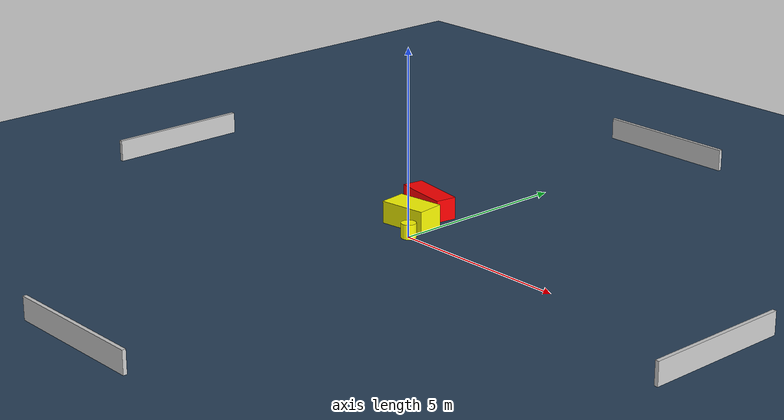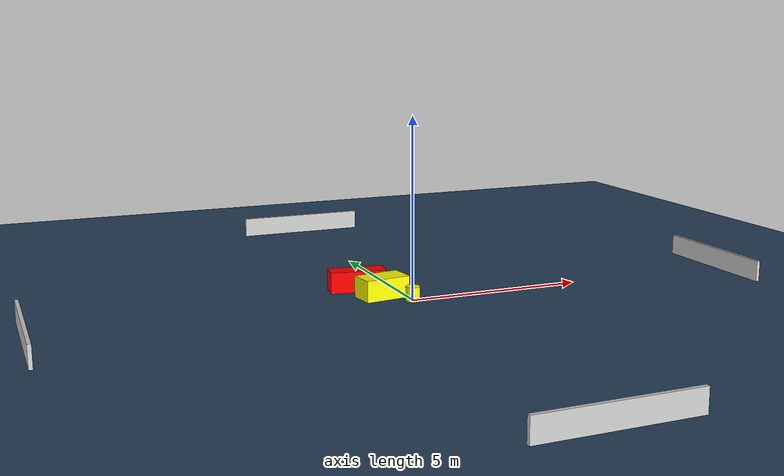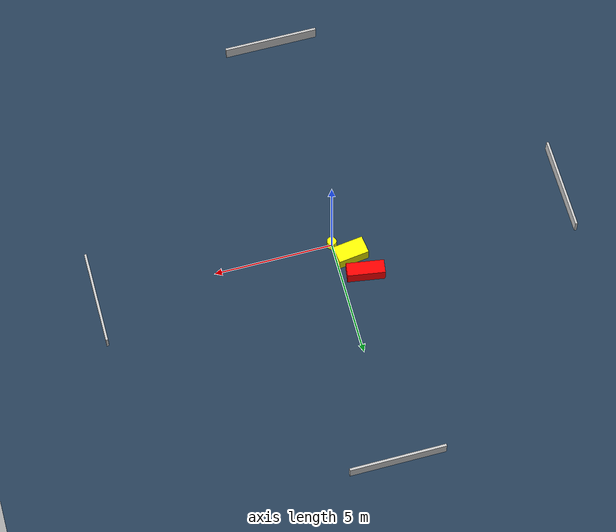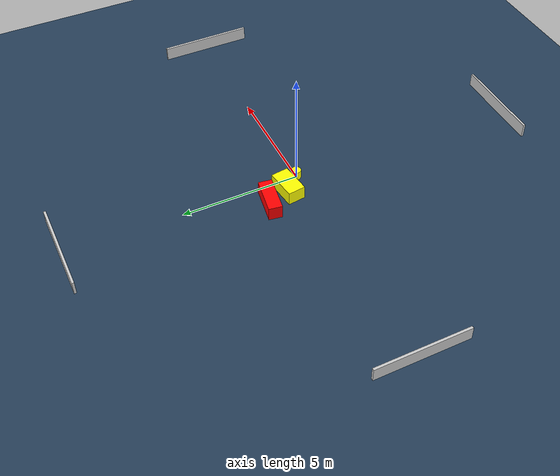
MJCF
<?xml version="1.0" ?>
<mujoco model="generated_environment">
  <option timestep="0.01" integrator="RK4" cone="elliptic"/>
  <default>
    <geom density="1"/>
  </default>
  <asset>
    <texture builtin="gradient" height="3072" name="skybox" rgb1="0.3 0.5 0.7" rgb2="0 0 0" type="skybox" width="512"/>
    <texture builtin="checker" height="300" name="groundplane" rgb1="0.2 0.3 0.4" rgb2="0.1 0.2 0.3" type="2d" width="300"/>
    <material name="groundplane" reflectance="0.2" texrepeat="5 5" texture="groundplane"/>
  </asset>
  <worldbody>
    <light dir="0 0 -1" directional="true" pos="0 0 1.5"/>
    <geom condim="3" friction="0.5 0.005 0.001" material="groundplane" name="floor" pos="0 0 0" size="0 0 0.05" type="plane"/>
    <body name="walls">
      <geom name="wall_1" condim="4" pos="-10.0 0.0 0.3" rgba="0.800000011920929 0.800000011920929 0.800000011920929 1.0" size="0.05 2.0 0.3" type="box"/>
      <geom name="wall_2" condim="4" pos="10.0 0.0 0.3" rgba="0.800000011920929 0.800000011920929 0.800000011920929 1.0" size="0.05 2.0 0.3" type="box"/>
      <geom name="wall_3" condim="4" pos="0.0 -10.0 0.3" rgba="0.800000011920929 0.800000011920929 0.800000011920929 1.0" size="2.0 0.05 0.3" type="box"/>
      <geom name="wall_4" condim="4" pos="0.0 10.0 0.3" rgba="0.800000011920929 0.800000011920929 0.800000011920929 1.0" size="2.0 0.05 0.3" type="box"/>
    </body>
    <body name="robot">
      <joint name="joint_x" type="slide" pos="0 0 0" axis="1 0 0"/>
      <joint name="joint_y" type="slide" pos="0 0 0" axis="0 1 0"/>
      <geom name="robot" type="cylinder" pos="0.0 0.0 0.2" size="0.2 0.2 0.0" mass="5.0" friction="1.0 0.005 0.0001" condim="4" rgba="1.0 1.0 0.0 1.0"/>
    </body>
    <body name="obstacle_1_movable">
      <geom name="obstacle_1_movable" condim="4" pos="-0.6312124572979709 0.6697929092352687 0.3" euler="0 0 97.45137659836342" friction="0.0 0.005 0.001" rgba="1.0 1.0 0.0 1.0" size="0.37481221089764527 0.6520504866806386 0.3" type="box" mass="0.1"/>
      <joint type="free"/>
    </body>
    <body name="obstacle_2_static">
      <geom name="obstacle_2_static" condim="4" pos="-1.0030357565608898 1.6422035468013376 0.3" euler="0 0 81.16429461908923" friction="0.0 0.005 0.001" rgba="1.0 0.0 0.0 1.0" size="0.2885421099766606 0.7896974696334547 0.3" type="box"/>
    </body>
  </worldbody>
  <actuator>
    <motor name="actuator_x" joint="joint_x" gear="1" ctrlrange="-1 1"/>
    <motor name="actuator_y" joint="joint_y" gear="1" ctrlrange="-1 1"/>
  </actuator>
</mujoco>
